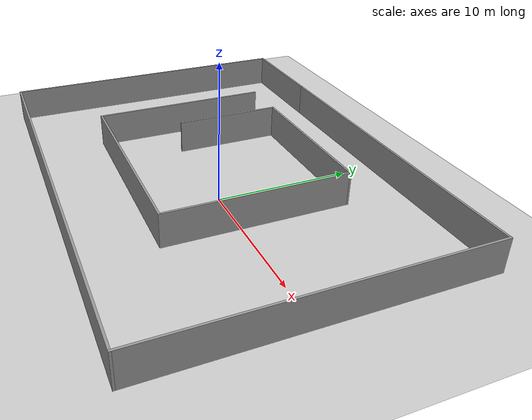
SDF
<sdf version="1.6">
 <world name="default">
  <light name="sun" type="directional">
   <pose>0 0 10 0 -0 0</pose>
   <diffuse>0.8 0.8 0.8 1</diffuse>
   <specular>0.2 0.2 0.2 1</specular>
   <attenuation>
    <range>1000</range>
    <constant>0.9</constant>
    <linear>0.01</linear>
    <quadratic>0.001</quadratic>
   </attenuation>
   <direction>-0.5 0.1 -0.9</direction>
  </light>
  <model name="ground_plane">
   <static>1</static>
   <link name="link">
    <collision name="collision">
     <geometry><plane><normal>0 0 1</normal><size>100 100</size></plane></geometry>
     <surface>
      <contact><collide_bitmask>65535</collide_bitmask></contact>
      <friction><ode><mu>100</mu><mu2>50</mu2></ode></friction>
     </surface>
    </collision>
    <visual name="visual">
     <cast_shadows>0</cast_shadows>
     <geometry><plane><normal>0 0 1</normal><size>100 100</size></plane></geometry>
     <material>
      <script><uri>file://media/materials/scripts/gazebo.material</uri><name>Gazebo/Grey</name></script>
     </material>
    </visual>
   </link>
  </model>
  <gravity>0 0 -9.8</gravity>
  <magnetic_field>6e-06 2.3e-05 -4.2e-05</magnetic_field>
  <atmosphere type="adiabatic"/>
  <physics name="default_physics" default="0" type="ode">
   <max_step_size>0.001</max_step_size>
   <real_time_factor>1</real_time_factor>
   <real_time_update_rate>1000</real_time_update_rate>
  </physics>
  <scene><ambient>0.4 0.4 0.4 1</ambient><background>0.7 0.7 0.7 1</background><shadows>1</shadows></scene>
  <audio><device>default</device></audio>
  <spherical_coordinates>
   <surface_model>EARTH_WGS84</surface_model>
   <latitude_deg>0</latitude_deg>
   <longitude_deg>0</longitude_deg>
   <elevation>0</elevation>
   <heading_deg>0</heading_deg>
  </spherical_coordinates>
  <model name="biger">
   <pose>-2.69566 0.770187 0 0 -0 0</pose>
   <link name="Wall_10">
    <collision name="Wall_10_Collision">
     <geometry><box><size>23.25 0.15 2.5</size></box></geometry>
     <pose>0 0 1.25 0 -0 0</pose>
    </collision>
    <visual name="Wall_10_Visual">
     <pose>0 0 1.25 0 -0 0</pose>
     <geometry><box><size>23.25 0.15 2.5</size></box></geometry>
     <material>
      <script><uri>file://media/materials/scripts/gazebo.material</uri><name>Gazebo/Grey</name></script>
      <ambient>1 1 1 1</ambient>
     </material>
     <meta><layer>0</layer></meta>
    </visual>
    <pose>-16.175 0 0 0 -0 1.5708</pose>
   </link>
   <link name="Wall_11">
    <collision name="Wall_11_Collision">
     <geometry><box><size>8 0.15 2.5</size></box></geometry>
     <pose>0 0 1.25 0 -0 0</pose>
    </collision>
    <visual name="Wall_11_Visual">
     <pose>0 0 1.25 0 -0 0</pose>
     <geometry><box><size>8 0.15 2.5</size></box></geometry>
     <material>
      <script><uri>file://media/materials/scripts/gazebo.material</uri><name>Gazebo/Grey</name></script>
      <ambient>1 1 1 1</ambient>
     </material>
     <meta><layer>0</layer></meta>
    </visual>
    <pose>-12.25 11.55 0 0 -0 0</pose>
   </link>
   <link name="Wall_13">
    <collision name="Wall_13_Collision">
     <geometry><box><size>13.5 0.15 2.5</size></box></geometry>
     <pose>0 0 1.25 0 -0 0</pose>
    </collision>
    <visual name="Wall_13_Visual">
     <pose>0 0 1.25 0 -0 0</pose>
     <geometry><box><size>13.5 0.15 2.5</size></box></geometry>
     <material>
      <script><uri>file://media/materials/scripts/gazebo.material</uri><name>Gazebo/Grey</name></script>
      <ambient>1 1 1 1</ambient>
     </material>
     <meta><layer>0</layer></meta>
    </visual>
    <pose>-8.6703 0.488063 0 0 -0 -1.5708</pose>
   </link>
   <link name="Wall_14">
    <collision name="Wall_14_Collision">
     <geometry><box><size>15.25 0.15 2.5</size></box></geometry>
     <pose>0 0 1.25 0 -0 0</pose>
    </collision>
    <visual name="Wall_14_Visual">
     <pose>0 0 1.25 0 -0 0</pose>
     <geometry><box><size>15.25 0.15 2.5</size></box></geometry>
     <material>
      <script><uri>file://media/materials/scripts/gazebo.material</uri><name>Gazebo/Grey</name></script>
      <ambient>1 1 1 1</ambient>
     </material>
     <meta><layer>0</layer></meta>
    </visual>
    <pose>-1.1203 -6.18694 0 0 -0 0</pose>
   </link>
   <link name="Wall_15">
    <collision name="Wall_15_Collision">
     <geometry><box><size>13.5 0.15 2.5</size></box></geometry>
     <pose>0 0 1.25 0 -0 0</pose>
    </collision>
    <visual name="Wall_15_Visual">
     <pose>0 0 1.25 0 -0 0</pose>
     <geometry><box><size>13.5 0.15 2.5</size></box></geometry>
     <material>
      <script><uri>file://media/materials/scripts/gazebo.material</uri><name>Gazebo/Grey</name></script>
      <ambient>1 1 1 1</ambient>
     </material>
     <meta><layer>0</layer></meta>
    </visual>
    <pose>6.4297 0.488063 0 0 -0 1.5708</pose>
   </link>
   <link name="Wall_16">
    <collision name="Wall_16_Collision">
     <geometry><box><size>11.75 0.15 2.5</size></box></geometry>
     <pose>0 0 1.25 0 -0 0</pose>
    </collision>
    <visual name="Wall_16_Visual">
     <pose>0 0 1.25 0 -0 0</pose>
     <geometry><box><size>11.75 0.15 2.5</size></box></geometry>
     <material>
      <script><uri>file://media/materials/scripts/gazebo.material</uri><name>Gazebo/Grey</name></script>
      <ambient>1 1 1 1</ambient>
     </material>
     <meta><layer>0</layer></meta>
    </visual>
    <pose>0.6297 7.16306 0 0 -0 3.14159</pose>
   </link>
   <link name="Wall_17">
    <collision name="Wall_17_Collision">
     <geometry><box><size>8 0.15 2.5</size></box></geometry>
     <pose>0 0 1.25 0 -0 0</pose>
    </collision>
    <visual name="Wall_17_Visual">
     <pose>0 0 1.25 0 -0 0</pose>
     <geometry><box><size>8 0.15 2.5</size></box></geometry>
     <material>
      <script><uri>file://media/materials/scripts/gazebo.material</uri><name>Gazebo/Grey</name></script>
      <ambient>1 1 1 1</ambient>
     </material>
     <meta><layer>0</layer></meta>
    </visual>
    <pose>-5.1703 3.23806 0 0 -0 -1.5708</pose>
   </link>
   <link name="Wall_6">
    <collision name="Wall_6_Collision">
     <geometry><box><size>24.5 0.15 2.5</size></box></geometry>
     <pose>0 0 1.25 0 -0 0</pose>
    </collision>
    <visual name="Wall_6_Visual">
     <pose>0 0 1.25 0 -0 0</pose>
     <geometry><box><size>24.5 0.15 2.5</size></box></geometry>
     <material>
      <script><uri>file://media/materials/scripts/gazebo.material</uri><name>Gazebo/Grey</name></script>
      <ambient>1 1 1 1</ambient>
     </material>
     <meta><layer>0</layer></meta>
    </visual>
    <pose>4 11.55 0 0 -0 0</pose>
   </link>
   <link name="Wall_8">
    <collision name="Wall_8_Collision">
     <geometry><box><size>23.25 0.15 2.5</size></box></geometry>
     <pose>0 0 1.25 0 -0 0</pose>
    </collision>
    <visual name="Wall_8_Visual">
     <pose>0 0 1.25 0 -0 0</pose>
     <geometry><box><size>23.25 0.15 2.5</size></box></geometry>
     <material>
      <script><uri>file://media/materials/scripts/gazebo.material</uri><name>Gazebo/Grey</name></script>
      <ambient>1 1 1 1</ambient>
     </material>
     <meta><layer>0</layer></meta>
    </visual>
    <pose>16.175 0 0 0 -0 -1.5708</pose>
   </link>
   <link name="Wall_9">
    <collision name="Wall_9_Collision">
     <geometry><box><size>32.5 0.15 2.5</size></box></geometry>
     <pose>0 0 1.25 0 -0 0</pose>
    </collision>
    <visual name="Wall_9_Visual">
     <pose>0 0 1.25 0 -0 0</pose>
     <geometry><box><size>32.5 0.15 2.5</size></box></geometry>
     <material>
      <script><uri>file://media/materials/scripts/gazebo.material</uri><name>Gazebo/Grey</name></script>
      <ambient>1 1 1 1</ambient>
     </material>
     <meta><layer>0</layer></meta>
    </visual>
    <pose>-0 -11.55 0 0 -0 3.14159</pose>
   </link>
   <static>1</static>
  </model>
 </world>
</sdf>
